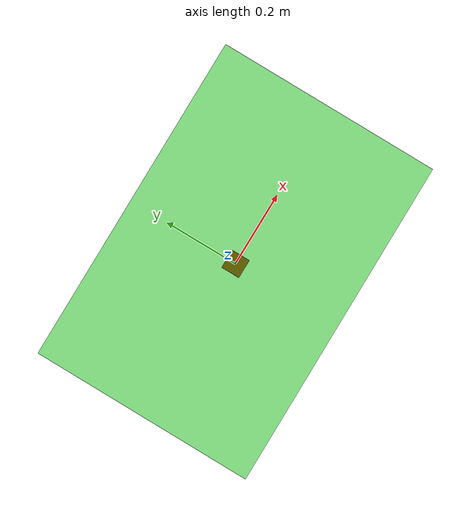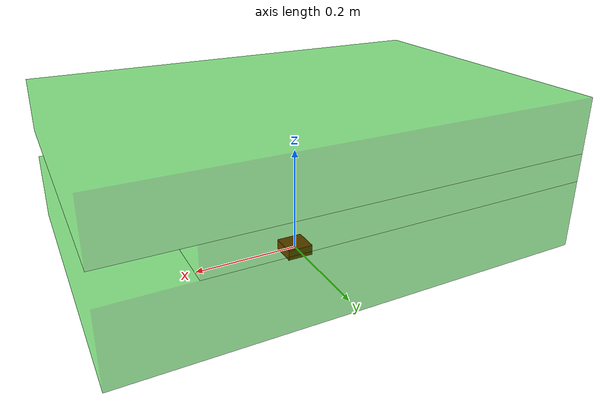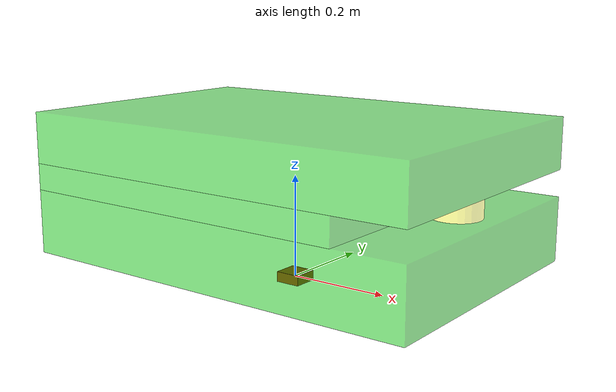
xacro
<?xml version="1.0"?>

<robot name="box_robot" xmlns:xacro="http://ros.org/wiki/xacro">

   <!-- Include all component files -->
   <xacro:include filename="$(find cartographer_ros)/urdf/aiv_virtual/materials.urdf.xacro" />
   <xacro:include filename="$(find cartographer_ros)/urdf/aiv_virtual/base.urdf.xacro" />

   <!-- Add the base and wheels -->
   <base name="base" color="TransparentGreen"/>

</robot>

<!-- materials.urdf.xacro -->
<robot>

  <!-- Put all the color definitions in a separate file -->

  <material name="Black">
    <color rgba="0.2 0.2 0.2 1.0"/>
  </material>

   <material name="TransparentBlack">
    <color rgba="0.2 0.2 0.2 0.8"/>
  </material>

  <material name="Orange">
    <color rgba="1.0  0.55 0.0 1.0"/>
  </material>

  <material name="Grey">
    <color rgba="0.7 0.7 0.7 1.0"/>
  </material>

  <material name="DarkGrey">
    <color rgba="0.3 0.3 0.3 1.0"/>
  </material>

  <material name="Red">
    <color rgba="0.8 0.0 0.0 1.0"/>
  </material>

  <material name="White">
    <color rgba="1.0 1.0 1.0 1.0"/>
  </material>

  <material name="OffWhite">
    <color rgba="0.8 0.8 0.8 1.0"/>
  </material>

  <material name="whiteTransparent">
	<color rgba="0.7 0.7 0.7 .5"/>
  </material>

  <material name="Blue">
    <color rgba="0.0 0.0 0.8 1.0"/>
  </material>

  <material name="Green">
    <color rgba="0.0 0.8 0.0 1.0"/>
  </material>

  <material name="TransparentGreen">
    <color rgba="0.0 0.8 0.0 0.5"/>
  </material>

</robot>

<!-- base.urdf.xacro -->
<robot name="base" xmlns:xacro="http://ros.org/wiki/xacro">

  <!-- Define a number of dimensions using properties -->
  <property name="base_box_length" value="0.825" />   <!-- length=0.815(base)+0.01(mechanical CA) -->
  <property name="base_box_width" value="0.553" />
  <property name="base_box_height" value="0.126" />
  <property name="base_equal_radius" value="0.5" />
  <property name="base_box_elevation" value="0.039" />

  <property name="mid_box_length" value="0.689" />
  <property name="mid_box_width" value="0.553" />
  <property name="mid_box_height" value="0.052" />
  <property name="mid_box_offset_x" value="0.068" />

  <property name="top_box_length" value="0.825" />
  <property name="top_box_width" value="0.553" />
  <property name="top_box_height" value="0.1" />

  <property name="laser_height" value="0.052" />
  <property name="laser_radius" value="0.046" />
  <property name="laser_offset_x" value="0.3445" />
  <property name="laser_offset_z" value="0.094" />

  <property name="PI" value="3.1415926" />

  <!-- The base xacro macro -->
  <macro name="base" params="name color">
    <link name="${name}_link_virtual">
        <visual>
            <origin xyz="0 0 0" rpy="0 0 0"/>
            <geometry>
                <box size="${base_box_length} ${base_box_width} ${base_box_height}"/>
            </geometry>
            <material name="TransparentGreen"/>
        </visual>
        <collision>
            <origin xyz="0 0 0" rpy="0 0 0"/>
            <geometry>
                <cylinder length="0.3" radius="${base_equal_radius}"/>
            </geometry>
        </collision>
    </link>
  </macro>

  <link name="base_footprint_virtual">
      <visual>
        <origin xyz="0 0 0" rpy="0 0 0" />
        <geometry>
          <box size="0.05 0.05 0.02" />
        </geometry>
        <material name="Red" />
      </visual>
  </link>

  <joint name="base_joint" type="fixed">
    <origin xyz="0 0 ${base_box_height/2 + base_box_elevation}" rpy="0 0 0" />
    <parent link="base_footprint_virtual"/>
    <child link="base_link_virtual" />
  </joint>

  <link name="mid_layer_virtual">
      <visual>
        <origin xyz="0 0 0" rpy="0 0 0" />
        <geometry>
          <box size="${mid_box_length} ${mid_box_width} ${mid_box_height}" />
        </geometry>
        <material name="TransparentGreen" />
      </visual>
  </link>

  <joint name="mid_layer_joint" type="fixed">
    <origin xyz="-${mid_box_offset_x} 0 ${base_box_height/2 + mid_box_height/2}" rpy="0 0 0" />
    <parent link="base_link_virtual"/>
    <child link="mid_layer_virtual" />
  </joint>

  <link name="top_layer_virtual">
      <visual>
        <origin xyz="0 0 0" rpy="0 0 0" />
        <geometry>
          <box size="${top_box_length} ${top_box_width} ${top_box_height}" />
        </geometry>
        <material name="TransparentGreen" />
      </visual>
  </link>

	<joint name="top_layer_joint" type="fixed">
		<origin xyz="0 0 ${base_box_height/2 + mid_box_height + top_box_height/2}" rpy="0 0 0" />
		<parent link="base_link_virtual"/>
		<child link="top_layer_virtual" />
	</joint>

	<link name="laser_virtual">
		<visual>
	  		<geometry>
	   			<cylinder radius="${laser_radius}" length="${laser_height}"/>
	  		</geometry>
	  		<material name="yellow">
		  		<color rgba="1 1 0 0.4"/>
	  		</material>
		</visual>
	</link>

	<joint name="laser_joint" type="fixed">
		<origin rpy="0  0  0" xyz="${laser_offset_x}  0  ${laser_offset_z}"/>
		<parent link="base_link_virtual"/>
		<child link="laser_virtual"/>
	</joint>

</robot>
